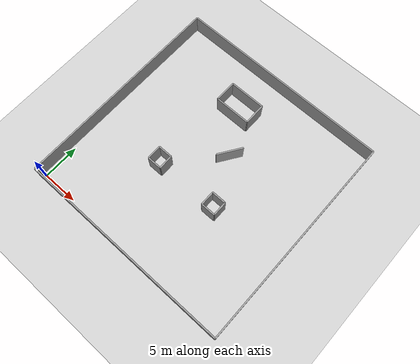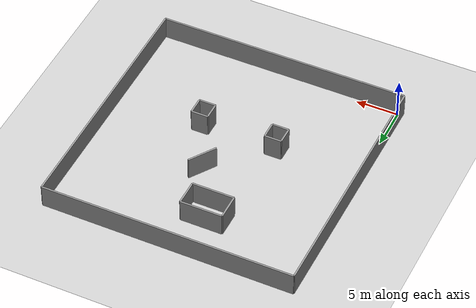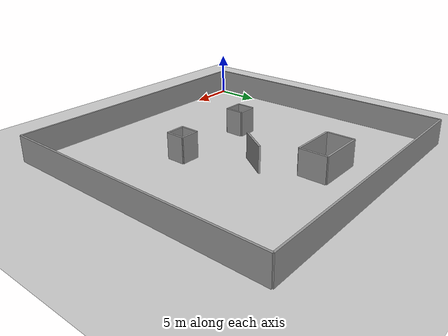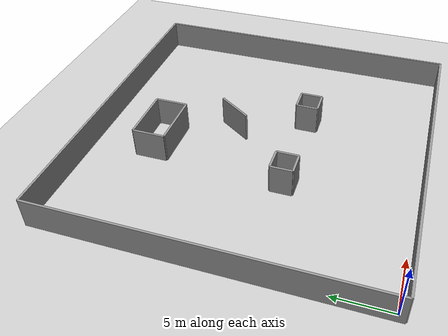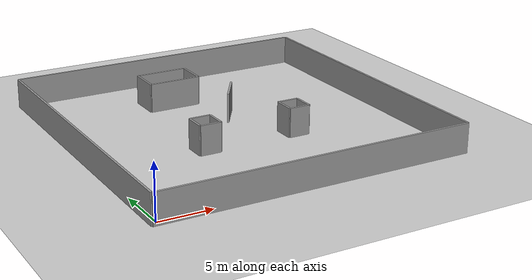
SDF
<?xml version="1.0" ?>

    <!-- this file is auto generated using pedsim_gazebo_plugin pkg -->
    <sdf version="1.5">
      <world name="default">

      <!-- Ground Plane -->

      <include>
        <uri>model://ground_plane</uri>
      </include>

      <include>
        <uri>model://sun</uri>
      </include>

     <model name='grey_wall_1'>
      <static>1</static>
      <link name='link'>

	  <pose frame=''>14.5 -0.5  1.4 0 0 0.0</pose>

        <collision name='collision'>
          <geometry>
            <box>

	     <size> 30.0 .2  2.8 </size>

      	   </box>
          </geometry>
          <max_contacts>10</max_contacts>
          <surface>
            <contact>
              <ode/>
            </contact>
            <bounce/>
            <friction>
              <torsional>
                <ode/>
              </torsional>
              <ode/>
            </friction>
          </surface>
        </collision>
        <visual name='visual'>
          <cast_shadows>0</cast_shadows>
          <geometry>
            <box>

	     <size> 30.0 .2  2.8 </size>

      	   </box>
       </geometry>
          <material>
            <script>
              <uri>model://grey_wall/materials/scripts</uri>
              <uri>model://grey_wall/materials/textures</uri>
              <name>vrc/grey_wall</name>
            </script>
          </material>
        </visual>
        <self_collide>0</self_collide>
        <enable_wind>0</enable_wind>
        <kinematic>0</kinematic>
      </link>
    </model>

     <model name='grey_wall_2'>
      <static>1</static>
      <link name='link'>

	  <pose frame=''>-0.5 14.5  1.4 0 0 1.57</pose>

        <collision name='collision'>
          <geometry>
            <box>

	     <size> 30.0 .2  2.8 </size>

      	   </box>
          </geometry>
          <max_contacts>10</max_contacts>
          <surface>
            <contact>
              <ode/>
            </contact>
            <bounce/>
            <friction>
              <torsional>
                <ode/>
              </torsional>
              <ode/>
            </friction>
          </surface>
        </collision>
        <visual name='visual'>
          <cast_shadows>0</cast_shadows>
          <geometry>
            <box>

	     <size> 30.0 .2  2.8 </size>

      	   </box>
       </geometry>
          <material>
            <script>
              <uri>model://grey_wall/materials/scripts</uri>
              <uri>model://grey_wall/materials/textures</uri>
              <name>vrc/grey_wall</name>
            </script>
          </material>
        </visual>
        <self_collide>0</self_collide>
        <enable_wind>0</enable_wind>
        <kinematic>0</kinematic>
      </link>
    </model>

     <model name='grey_wall_3'>
      <static>1</static>
      <link name='link'>

	  <pose frame=''>14.5 29.5  1.4 0 0 0.0</pose>

        <collision name='collision'>
          <geometry>
            <box>

	     <size> 30.0 .2  2.8 </size>

      	   </box>
          </geometry>
          <max_contacts>10</max_contacts>
          <surface>
            <contact>
              <ode/>
            </contact>
            <bounce/>
            <friction>
              <torsional>
                <ode/>
              </torsional>
              <ode/>
            </friction>
          </surface>
        </collision>
        <visual name='visual'>
          <cast_shadows>0</cast_shadows>
          <geometry>
            <box>

	     <size> 30.0 .2  2.8 </size>

      	   </box>
       </geometry>
          <material>
            <script>
              <uri>model://grey_wall/materials/scripts</uri>
              <uri>model://grey_wall/materials/textures</uri>
              <name>vrc/grey_wall</name>
            </script>
          </material>
        </visual>
        <self_collide>0</self_collide>
        <enable_wind>0</enable_wind>
        <kinematic>0</kinematic>
      </link>
    </model>

     <model name='grey_wall_4'>
      <static>1</static>
      <link name='link'>

	  <pose frame=''>29.5 14.5  1.4 0 0 1.57</pose>

        <collision name='collision'>
          <geometry>
            <box>

	     <size> 30.0 .2  2.8 </size>

      	   </box>
          </geometry>
          <max_contacts>10</max_contacts>
          <surface>
            <contact>
              <ode/>
            </contact>
            <bounce/>
            <friction>
              <torsional>
                <ode/>
              </torsional>
              <ode/>
            </friction>
          </surface>
        </collision>
        <visual name='visual'>
          <cast_shadows>0</cast_shadows>
          <geometry>
            <box>

	     <size> 30.0 .2  2.8 </size>

      	   </box>
       </geometry>
          <material>
            <script>
              <uri>model://grey_wall/materials/scripts</uri>
              <uri>model://grey_wall/materials/textures</uri>
              <name>vrc/grey_wall</name>
            </script>
          </material>
        </visual>
        <self_collide>0</self_collide>
        <enable_wind>0</enable_wind>
        <kinematic>0</kinematic>
      </link>
    </model>

     <model name='grey_wall_5'>
      <static>1</static>
      <link name='link'>

	  <pose frame=''>12.5 22.0  1.4 0 0 0.0</pose>

        <collision name='collision'>
          <geometry>
            <box>

	     <size> 5.0 .2  2.8 </size>

      	   </box>
          </geometry>
          <max_contacts>10</max_contacts>
          <surface>
            <contact>
              <ode/>
            </contact>
            <bounce/>
            <friction>
              <torsional>
                <ode/>
              </torsional>
              <ode/>
            </friction>
          </surface>
        </collision>
        <visual name='visual'>
          <cast_shadows>0</cast_shadows>
          <geometry>
            <box>

	     <size> 5.0 .2  2.8 </size>

      	   </box>
       </geometry>
          <material>
            <script>
              <uri>model://grey_wall/materials/scripts</uri>
              <uri>model://grey_wall/materials/textures</uri>
              <name>vrc/grey_wall</name>
            </script>
          </material>
        </visual>
        <self_collide>0</self_collide>
        <enable_wind>0</enable_wind>
        <kinematic>0</kinematic>
      </link>
    </model>

     <model name='grey_wall_6'>
      <static>1</static>
      <link name='link'>

	  <pose frame=''>10.0 23.5  1.4 0 0 1.57</pose>

        <collision name='collision'>
          <geometry>
            <box>

	     <size> 3.0 .2  2.8 </size>

      	   </box>
          </geometry>
          <max_contacts>10</max_contacts>
          <surface>
            <contact>
              <ode/>
            </contact>
            <bounce/>
            <friction>
              <torsional>
                <ode/>
              </torsional>
              <ode/>
            </friction>
          </surface>
        </collision>
        <visual name='visual'>
          <cast_shadows>0</cast_shadows>
          <geometry>
            <box>

	     <size> 3.0 .2  2.8 </size>

      	   </box>
       </geometry>
          <material>
            <script>
              <uri>model://grey_wall/materials/scripts</uri>
              <uri>model://grey_wall/materials/textures</uri>
              <name>vrc/grey_wall</name>
            </script>
          </material>
        </visual>
        <self_collide>0</self_collide>
        <enable_wind>0</enable_wind>
        <kinematic>0</kinematic>
      </link>
    </model>

     <model name='grey_wall_7'>
      <static>1</static>
      <link name='link'>

	  <pose frame=''>12.5 25.0  1.4 0 0 0.0</pose>

        <collision name='collision'>
          <geometry>
            <box>

	     <size> 5.0 .2  2.8 </size>

      	   </box>
          </geometry>
          <max_contacts>10</max_contacts>
          <surface>
            <contact>
              <ode/>
            </contact>
            <bounce/>
            <friction>
              <torsional>
                <ode/>
              </torsional>
              <ode/>
            </friction>
          </surface>
        </collision>
        <visual name='visual'>
          <cast_shadows>0</cast_shadows>
          <geometry>
            <box>

	     <size> 5.0 .2  2.8 </size>

      	   </box>
       </geometry>
          <material>
            <script>
              <uri>model://grey_wall/materials/scripts</uri>
              <uri>model://grey_wall/materials/textures</uri>
              <name>vrc/grey_wall</name>
            </script>
          </material>
        </visual>
        <self_collide>0</self_collide>
        <enable_wind>0</enable_wind>
        <kinematic>0</kinematic>
      </link>
    </model>

     <model name='grey_wall_8'>
      <static>1</static>
      <link name='link'>

	  <pose frame=''>15.0 23.5  1.4 0 0 1.57</pose>

        <collision name='collision'>
          <geometry>
            <box>

	     <size> 3.0 .2  2.8 </size>

      	   </box>
          </geometry>
          <max_contacts>10</max_contacts>
          <surface>
            <contact>
              <ode/>
            </contact>
            <bounce/>
            <friction>
              <torsional>
                <ode/>
              </torsional>
              <ode/>
            </friction>
          </surface>
        </collision>
        <visual name='visual'>
          <cast_shadows>0</cast_shadows>
          <geometry>
            <box>

	     <size> 3.0 .2  2.8 </size>

      	   </box>
       </geometry>
          <material>
            <script>
              <uri>model://grey_wall/materials/scripts</uri>
              <uri>model://grey_wall/materials/textures</uri>
              <name>vrc/grey_wall</name>
            </script>
          </material>
        </visual>
        <self_collide>0</self_collide>
        <enable_wind>0</enable_wind>
        <kinematic>0</kinematic>
      </link>
    </model>

     <model name='grey_wall_9'>
      <static>1</static>
      <link name='link'>

	  <pose frame=''>19.0 10.0  1.4 0 0 0.0</pose>

        <collision name='collision'>
          <geometry>
            <box>

	     <size> 2.0 .2  2.8 </size>

      	   </box>
          </geometry>
          <max_contacts>10</max_contacts>
          <surface>
            <contact>
              <ode/>
            </contact>
            <bounce/>
            <friction>
              <torsional>
                <ode/>
              </torsional>
              <ode/>
            </friction>
          </surface>
        </collision>
        <visual name='visual'>
          <cast_shadows>0</cast_shadows>
          <geometry>
            <box>

	     <size> 2.0 .2  2.8 </size>

      	   </box>
       </geometry>
          <material>
            <script>
              <uri>model://grey_wall/materials/scripts</uri>
              <uri>model://grey_wall/materials/textures</uri>
              <name>vrc/grey_wall</name>
            </script>
          </material>
        </visual>
        <self_collide>0</self_collide>
        <enable_wind>0</enable_wind>
        <kinematic>0</kinematic>
      </link>
    </model>

     <model name='grey_wall_10'>
      <static>1</static>
      <link name='link'>

	  <pose frame=''>18.0 11.0  1.4 0 0 1.57</pose>

        <collision name='collision'>
          <geometry>
            <box>

	     <size> 2.0 .2  2.8 </size>

      	   </box>
          </geometry>
          <max_contacts>10</max_contacts>
          <surface>
            <contact>
              <ode/>
            </contact>
            <bounce/>
            <friction>
              <torsional>
                <ode/>
              </torsional>
              <ode/>
            </friction>
          </surface>
        </collision>
        <visual name='visual'>
          <cast_shadows>0</cast_shadows>
          <geometry>
            <box>

	     <size> 2.0 .2  2.8 </size>

      	   </box>
       </geometry>
          <material>
            <script>
              <uri>model://grey_wall/materials/scripts</uri>
              <uri>model://grey_wall/materials/textures</uri>
              <name>vrc/grey_wall</name>
            </script>
          </material>
        </visual>
        <self_collide>0</self_collide>
        <enable_wind>0</enable_wind>
        <kinematic>0</kinematic>
      </link>
    </model>

     <model name='grey_wall_11'>
      <static>1</static>
      <link name='link'>

	  <pose frame=''>19.0 12.0  1.4 0 0 0.0</pose>

        <collision name='collision'>
          <geometry>
            <box>

	     <size> 2.0 .2  2.8 </size>

      	   </box>
          </geometry>
          <max_contacts>10</max_contacts>
          <surface>
            <contact>
              <ode/>
            </contact>
            <bounce/>
            <friction>
              <torsional>
                <ode/>
              </torsional>
              <ode/>
            </friction>
          </surface>
        </collision>
        <visual name='visual'>
          <cast_shadows>0</cast_shadows>
          <geometry>
            <box>

	     <size> 2.0 .2  2.8 </size>

      	   </box>
       </geometry>
          <material>
            <script>
              <uri>model://grey_wall/materials/scripts</uri>
              <uri>model://grey_wall/materials/textures</uri>
              <name>vrc/grey_wall</name>
            </script>
          </material>
        </visual>
        <self_collide>0</self_collide>
        <enable_wind>0</enable_wind>
        <kinematic>0</kinematic>
      </link>
    </model>

     <model name='grey_wall_12'>
      <static>1</static>
      <link name='link'>

	  <pose frame=''>20.0 11.0  1.4 0 0 1.57</pose>

        <collision name='collision'>
          <geometry>
            <box>

	     <size> 2.0 .2  2.8 </size>

      	   </box>
          </geometry>
          <max_contacts>10</max_contacts>
          <surface>
            <contact>
              <ode/>
            </contact>
            <bounce/>
            <friction>
              <torsional>
                <ode/>
              </torsional>
              <ode/>
            </friction>
          </surface>
        </collision>
        <visual name='visual'>
          <cast_shadows>0</cast_shadows>
          <geometry>
            <box>

	     <size> 2.0 .2  2.8 </size>

      	   </box>
       </geometry>
          <material>
            <script>
              <uri>model://grey_wall/materials/scripts</uri>
              <uri>model://grey_wall/materials/textures</uri>
              <name>vrc/grey_wall</name>
            </script>
          </material>
        </visual>
        <self_collide>0</self_collide>
        <enable_wind>0</enable_wind>
        <kinematic>0</kinematic>
      </link>
    </model>

     <model name='grey_wall_13'>
      <static>1</static>
      <link name='link'>

	  <pose frame=''>10.0 10.0  1.4 0 0 0.0</pose>

        <collision name='collision'>
          <geometry>
            <box>

	     <size> 2.0 .2  2.8 </size>

      	   </box>
          </geometry>
          <max_contacts>10</max_contacts>
          <surface>
            <contact>
              <ode/>
            </contact>
            <bounce/>
            <friction>
              <torsional>
                <ode/>
              </torsional>
              <ode/>
            </friction>
          </surface>
        </collision>
        <visual name='visual'>
          <cast_shadows>0</cast_shadows>
          <geometry>
            <box>

	     <size> 2.0 .2  2.8 </size>

      	   </box>
       </geometry>
          <material>
            <script>
              <uri>model://grey_wall/materials/scripts</uri>
              <uri>model://grey_wall/materials/textures</uri>
              <name>vrc/grey_wall</name>
            </script>
          </material>
        </visual>
        <self_collide>0</self_collide>
        <enable_wind>0</enable_wind>
        <kinematic>0</kinematic>
      </link>
    </model>

     <model name='grey_wall_14'>
      <static>1</static>
      <link name='link'>

	  <pose frame=''>9.0 11.0  1.4 0 0 1.57</pose>

        <collision name='collision'>
          <geometry>
            <box>

	     <size> 2.0 .2  2.8 </size>

      	   </box>
          </geometry>
          <max_contacts>10</max_contacts>
          <surface>
            <contact>
              <ode/>
            </contact>
            <bounce/>
            <friction>
              <torsional>
                <ode/>
              </torsional>
              <ode/>
            </friction>
          </surface>
        </collision>
        <visual name='visual'>
          <cast_shadows>0</cast_shadows>
          <geometry>
            <box>

	     <size> 2.0 .2  2.8 </size>

      	   </box>
       </geometry>
          <material>
            <script>
              <uri>model://grey_wall/materials/scripts</uri>
              <uri>model://grey_wall/materials/textures</uri>
              <name>vrc/grey_wall</name>
            </script>
          </material>
        </visual>
        <self_collide>0</self_collide>
        <enable_wind>0</enable_wind>
        <kinematic>0</kinematic>
      </link>
    </model>

     <model name='grey_wall_15'>
      <static>1</static>
      <link name='link'>

	  <pose frame=''>10.0 12.0  1.4 0 0 0.0</pose>

        <collision name='collision'>
          <geometry>
            <box>

	     <size> 2.0 .2  2.8 </size>

      	   </box>
          </geometry>
          <max_contacts>10</max_contacts>
          <surface>
            <contact>
              <ode/>
            </contact>
            <bounce/>
            <friction>
              <torsional>
                <ode/>
              </torsional>
              <ode/>
            </friction>
          </surface>
        </collision>
        <visual name='visual'>
          <cast_shadows>0</cast_shadows>
          <geometry>
            <box>

	     <size> 2.0 .2  2.8 </size>

      	   </box>
       </geometry>
          <material>
            <script>
              <uri>model://grey_wall/materials/scripts</uri>
              <uri>model://grey_wall/materials/textures</uri>
              <name>vrc/grey_wall</name>
            </script>
          </material>
        </visual>
        <self_collide>0</self_collide>
        <enable_wind>0</enable_wind>
        <kinematic>0</kinematic>
      </link>
    </model>

     <model name='grey_wall_16'>
      <static>1</static>
      <link name='link'>

	  <pose frame=''>11.0 11.0  1.4 0 0 1.57</pose>

        <collision name='collision'>
          <geometry>
            <box>

	     <size> 2.0 .2  2.8 </size>

      	   </box>
          </geometry>
          <max_contacts>10</max_contacts>
          <surface>
            <contact>
              <ode/>
            </contact>
            <bounce/>
            <friction>
              <torsional>
                <ode/>
              </torsional>
              <ode/>
            </friction>
          </surface>
        </collision>
        <visual name='visual'>
          <cast_shadows>0</cast_shadows>
          <geometry>
            <box>

	     <size> 2.0 .2  2.8 </size>

      	   </box>
       </geometry>
          <material>
            <script>
              <uri>model://grey_wall/materials/scripts</uri>
              <uri>model://grey_wall/materials/textures</uri>
              <name>vrc/grey_wall</name>
            </script>
          </material>
        </visual>
        <self_collide>0</self_collide>
        <enable_wind>0</enable_wind>
        <kinematic>0</kinematic>
      </link>
    </model>

     <model name='grey_wall_17'>
      <static>1</static>
      <link name='link'>

	  <pose frame=''>16.0 17.5  1.4 0 0 0.982793723247</pose>

        <collision name='collision'>
          <geometry>
            <box>

	     <size> 3.60555127546 .2  2.8 </size>

      	   </box>
          </geometry>
          <max_contacts>10</max_contacts>
          <surface>
            <contact>
              <ode/>
            </contact>
            <bounce/>
            <friction>
              <torsional>
                <ode/>
              </torsional>
              <ode/>
            </friction>
          </surface>
        </collision>
        <visual name='visual'>
          <cast_shadows>0</cast_shadows>
          <geometry>
            <box>

	     <size> 3.60555127546 .2  2.8 </size>

      	   </box>
       </geometry>
          <material>
            <script>
              <uri>model://grey_wall/materials/scripts</uri>
              <uri>model://grey_wall/materials/textures</uri>
              <name>vrc/grey_wall</name>
            </script>
          </material>
        </visual>
        <self_collide>0</self_collide>
        <enable_wind>0</enable_wind>
        <kinematic>0</kinematic>
      </link>
    </model>

            <plugin name="ActorPosesPlugin" filename="libActorPosesPlugin.dylib">
        </plugin>

      </world>
    </sdf>
